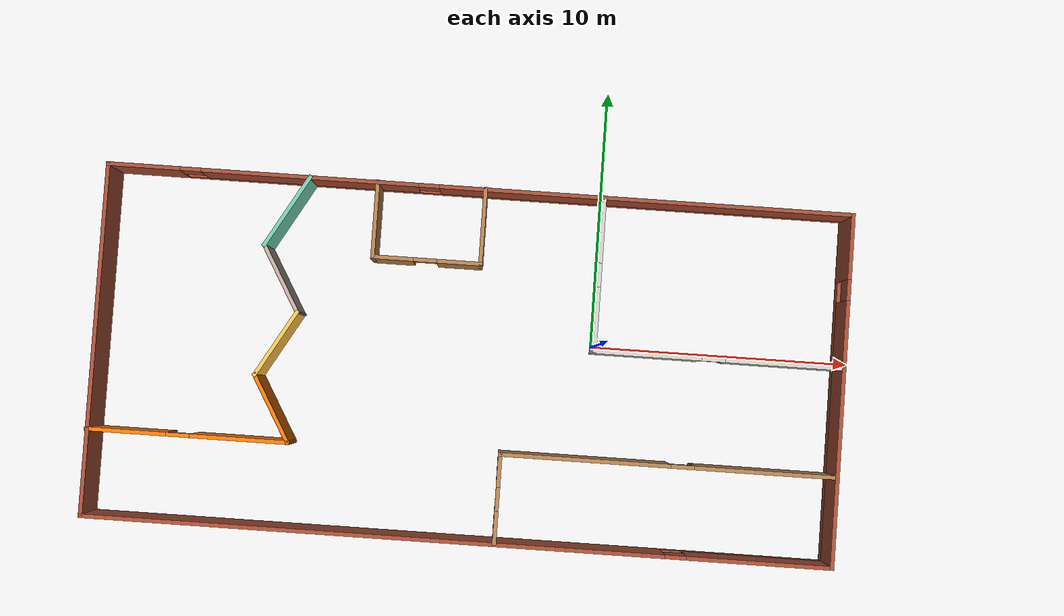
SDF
<?xml version='1.0'?>
<sdf version='1.6'>
  <model name='office'>
    <pose frame=''>-4.73889 -1.01683 0 0 -0 0</pose>
    <link name='Wall_0'>
      <collision name='Wall_0_Collision'>
        <geometry>
          <box>
            <size>13.5 0.15 2.5</size>
          </box>
        </geometry>
        <pose frame=''>0 0 1.25 0 -0 0</pose>
      </collision>
      <visual name='Wall_0_Visual'>
        <pose frame=''>0 0 1.25 0 -0 0</pose>
        <geometry>
          <box>
            <size>13.5 0.15 2.5</size>
          </box>
        </geometry>
        <material>
          <script>
            <uri>file://media/materials/scripts/gazebo.material</uri>
            <name>Gazebo/Bricks</name>
          </script>
          <ambient>1 1 1 1</ambient>
        </material>
        <meta>
          <layer>0</layer>
        </meta>
      </visual>
      <pose frame=''>-14.1592 -0.021409 0 0 0 -1.5708</pose>
    </link>
    <link name='Wall_1'>
      <pose frame=''>0.015849 -6.69641 0 0 -0 0</pose>
      <visual name='Wall_1_Visual_0'>
        <pose frame=''>-3.18138 0 1.25 0 -0 0</pose>
        <geometry>
          <box>
            <size>22.1372 0.15 2.5</size>
          </box>
        </geometry>
        <material>
          <script>
            <uri>file://media/materials/scripts/gazebo.material</uri>
            <name>Gazebo/Bricks</name>
          </script>
          <ambient>1 1 1 1</ambient>
        </material>
        <meta>
          <layer>0</layer>
        </meta>
      </visual>
      <collision name='Wall_1_Collision_0'>
        <geometry>
          <box>
            <size>22.1372 0.15 2.5</size>
          </box>
        </geometry>
        <pose frame=''>-3.18138 0 1.25 0 -0 0</pose>
      </collision>
      <visual name='Wall_1_Visual_1'>
        <pose frame=''>11.0686 0 0.25 0 -0 0</pose>
        <geometry>
          <box>
            <size>6.36277 0.15 0.5</size>
          </box>
        </geometry>
        <material>
          <script>
            <uri>file://media/materials/scripts/gazebo.material</uri>
            <name>Gazebo/Bricks</name>
          </script>
          <ambient>1 1 1 1</ambient>
        </material>
        <meta>
          <layer>0</layer>
        </meta>
      </visual>
      <collision name='Wall_1_Collision_1'>
        <geometry>
          <box>
            <size>6.36277 0.15 0.5</size>
          </box>
        </geometry>
        <pose frame=''>11.0686 0 0.25 0 -0 0</pose>
      </collision>
      <visual name='Wall_1_Visual_2'>
        <pose frame=''>11.4686 0 1.5 0 -0 0</pose>
        <geometry>
          <box>
            <size>5.56277 0.15 2</size>
          </box>
        </geometry>
        <material>
          <script>
            <uri>file://media/materials/scripts/gazebo.material</uri>
            <name>Gazebo/Bricks</name>
          </script>
          <ambient>1 1 1 1</ambient>
        </material>
        <meta>
          <layer>0</layer>
        </meta>
      </visual>
      <collision name='Wall_1_Collision_2'>
        <geometry>
          <box>
            <size>5.56277 0.15 2</size>
          </box>
        </geometry>
        <pose frame=''>11.4686 0 1.5 0 -0 0</pose>
      </collision>
      <visual name='Wall_1_Visual_3'>
        <pose frame=''>8.28723 0 1.9 0 -0 0</pose>
        <geometry>
          <box>
            <size>0.8 0.15 1.2</size>
          </box>
        </geometry>
        <material>
          <script>
            <uri>file://media/materials/scripts/gazebo.material</uri>
            <name>Gazebo/Bricks</name>
          </script>
          <ambient>1 1 1 1</ambient>
        </material>
        <meta>
          <layer>0</layer>
        </meta>
      </visual>
      <collision name='Wall_1_Collision_3'>
        <geometry>
          <box>
            <size>0.8 0.15 1.2</size>
          </box>
        </geometry>
        <pose frame=''>8.28723 0 1.9 0 -0 0</pose>
      </collision>
    </link>
    <link name='Wall_10'>
      <collision name='Wall_10_Collision'>
        <geometry>
          <box>
            <size>3 0.15 2.5</size>
          </box>
        </geometry>
        <pose frame=''>0 0 1.25 0 -0 0</pose>
      </collision>
      <visual name='Wall_10_Visual'>
        <pose frame=''>0 0 1.25 0 -0 0</pose>
        <geometry>
          <box>
            <size>3 0.15 2.5</size>
          </box>
        </geometry>
        <material>
          <script>
            <uri>file://media/materials/scripts/gazebo.material</uri>
            <name>Gazebo/Grey</name>
          </script>
          <ambient>0.760784 0.662745 0.627451 1</ambient>
        </material>
        <meta>
          <layer>0</layer>
        </meta>
      </visual>
      <pose frame=''>-7.30335 2.75019 0 0 0 -1.0472</pose>
    </link>
    <link name='Wall_11'>
      <collision name='Wall_11_Collision'>
        <geometry>
          <box>
            <size>3 0.15 2.5</size>
          </box>
        </geometry>
        <pose frame=''>0 0 1.25 0 -0 0</pose>
      </collision>
      <visual name='Wall_11_Visual'>
        <pose frame=''>0 0 1.25 0 -0 0</pose>
        <geometry>
          <box>
            <size>3 0.15 2.5</size>
          </box>
        </geometry>
        <material>
          <script>
            <uri>file://media/materials/scripts/gazebo.material</uri>
            <name>Gazebo/Grey</name>
          </script>
          <ambient>1 0.764706 0.305882 1</ambient>
        </material>
        <meta>
          <layer>0</layer>
        </meta>
      </visual>
      <pose frame=''>-7.30335 0.282021 0 0 0 -2.0944</pose>
    </link>
    <link name='Wall_12'>
      <collision name='Wall_12_Collision'>
        <geometry>
          <box>
            <size>3 0.15 2.5</size>
          </box>
        </geometry>
        <pose frame=''>0 0 1.25 0 -0 0</pose>
      </collision>
      <visual name='Wall_12_Visual'>
        <pose frame=''>0 0 1.25 0 -0 0</pose>
        <geometry>
          <box>
            <size>3 0.15 2.5</size>
          </box>
        </geometry>
        <material>
          <script>
            <uri>file://media/materials/scripts/gazebo.material</uri>
            <name>Gazebo/Grey</name>
          </script>
          <ambient>0.996078 0.47451 0.0196078 1</ambient>
        </material>
        <meta>
          <layer>0</layer>
        </meta>
      </visual>
      <pose frame=''>-7.30335 -2.18615 0 0 0 -1.0472</pose>
    </link>
    <link name='Wall_13'>
      <pose frame=''>-10.3909 -3.42024 0 0 -0 3.14159</pose>
      <visual name='Wall_13_Visual_0'>
        <pose frame=''>-1.98848 0 1.25 0 -0 0</pose>
        <geometry>
          <box>
            <size>3.77303 0.15 2.5</size>
          </box>
        </geometry>
        <material>
          <script>
            <uri>file://media/materials/scripts/gazebo.material</uri>
            <name>Gazebo/Grey</name>
          </script>
          <ambient>0.996078 0.47451 0.0196078 1</ambient>
        </material>
        <meta>
          <layer>0</layer>
        </meta>
      </visual>
      <collision name='Wall_13_Collision_0'>
        <geometry>
          <box>
            <size>3.77303 0.15 2.5</size>
          </box>
        </geometry>
        <pose frame=''>-1.98848 0 1.25 0 -0 0</pose>
      </collision>
      <visual name='Wall_13_Visual_1'>
        <pose frame=''>2.33652 0 1.25 0 -0 0</pose>
        <geometry>
          <box>
            <size>3.07697 0.15 2.5</size>
          </box>
        </geometry>
        <material>
          <script>
            <uri>file://media/materials/scripts/gazebo.material</uri>
            <name>Gazebo/Grey</name>
          </script>
          <ambient>0.996078 0.47451 0.0196078 1</ambient>
        </material>
        <meta>
          <layer>0</layer>
        </meta>
      </visual>
      <collision name='Wall_13_Collision_1'>
        <geometry>
          <box>
            <size>3.07697 0.15 2.5</size>
          </box>
        </geometry>
        <pose frame=''>2.33652 0 1.25 0 -0 0</pose>
      </collision>
      <visual name='Wall_13_Visual_2'>
        <pose frame=''>0.348034 0 2.25 0 -0 0</pose>
        <geometry>
          <box>
            <size>0.9 0.15 0.5</size>
          </box>
        </geometry>
        <material>
          <script>
            <uri>file://media/materials/scripts/gazebo.material</uri>
            <name>Gazebo/Grey</name>
          </script>
          <ambient>0.996078 0.47451 0.0196078 1</ambient>
        </material>
        <meta>
          <layer>0</layer>
        </meta>
      </visual>
      <collision name='Wall_13_Collision_2'>
        <geometry>
          <box>
            <size>0.9 0.15 0.5</size>
          </box>
        </geometry>
        <pose frame=''>0.348034 0 2.25 0 -0 0</pose>
      </collision>
    </link>
    <link name='Wall_15'>
      <pose frame=''>4.73531 3.74396 0 0 0 -1.5708</pose>
      <visual name='Wall_15_Visual_0'>
        <pose frame=''>-1.71476 0 1.25 0 -0 0</pose>
        <geometry>
          <box>
            <size>2.57049 0.15 2.5</size>
          </box>
        </geometry>
        <material>
          <script>
            <uri>file://media/materials/scripts/gazebo.material</uri>
            <name>Gazebo/CeilingTiled</name>
          </script>
          <ambient>1 1 1 1</ambient>
        </material>
        <meta>
          <layer>0</layer>
        </meta>
      </visual>
      <collision name='Wall_15_Collision_0'>
        <geometry>
          <box>
            <size>2.57049 0.15 2.5</size>
          </box>
        </geometry>
        <pose frame=''>-1.71476 0 1.25 0 -0 0</pose>
      </collision>
      <visual name='Wall_15_Visual_1'>
        <pose frame=''>1.73524 0 1.25 0 -0 0</pose>
        <geometry>
          <box>
            <size>2.52951 0.15 2.5</size>
          </box>
        </geometry>
        <material>
          <script>
            <uri>file://media/materials/scripts/gazebo.material</uri>
            <name>Gazebo/CeilingTiled</name>
          </script>
          <ambient>1 1 1 1</ambient>
        </material>
        <meta>
          <layer>0</layer>
        </meta>
      </visual>
      <collision name='Wall_15_Collision_1'>
        <geometry>
          <box>
            <size>2.52951 0.15 2.5</size>
          </box>
        </geometry>
        <pose frame=''>1.73524 0 1.25 0 -0 0</pose>
      </collision>
      <visual name='Wall_15_Visual_2'>
        <pose frame=''>0.020489 0 2.25 0 -0 0</pose>
        <geometry>
          <box>
            <size>0.9 0.15 0.5</size>
          </box>
        </geometry>
        <material>
          <script>
            <uri>file://media/materials/scripts/gazebo.material</uri>
            <name>Gazebo/CeilingTiled</name>
          </script>
          <ambient>1 1 1 1</ambient>
        </material>
        <meta>
          <layer>0</layer>
        </meta>
      </visual>
      <collision name='Wall_15_Collision_2'>
        <geometry>
          <box>
            <size>0.9 0.15 0.5</size>
          </box>
        </geometry>
        <pose frame=''>0.020489 0 2.25 0 -0 0</pose>
      </collision>
    </link>
    <link name='Wall_16'>
      <pose frame=''>9.41031 0.818959 0 0 -0 0</pose>
      <visual name='Wall_16_Visual_0'>
        <pose frame=''>-2.67653 0 1.25 0 -0 0</pose>
        <geometry>
          <box>
            <size>4.14695 0.15 2.5</size>
          </box>
        </geometry>
        <material>
          <script>
            <uri>file://media/materials/scripts/gazebo.material</uri>
            <name>Gazebo/CeilingTiled</name>
          </script>
          <ambient>1 1 1 1</ambient>
        </material>
        <meta>
          <layer>0</layer>
        </meta>
      </visual>
      <collision name='Wall_16_Collision_0'>
        <geometry>
          <box>
            <size>4.14695 0.15 2.5</size>
          </box>
        </geometry>
        <pose frame=''>-2.67653 0 1.25 0 -0 0</pose>
      </collision>
      <visual name='Wall_16_Visual_1'>
        <pose frame=''>2.52347 0 1.25 0 -0 0</pose>
        <geometry>
          <box>
            <size>4.45305 0.15 2.5</size>
          </box>
        </geometry>
        <material>
          <script>
            <uri>file://media/materials/scripts/gazebo.material</uri>
            <name>Gazebo/CeilingTiled</name>
          </script>
          <ambient>1 1 1 1</ambient>
        </material>
        <meta>
          <layer>0</layer>
        </meta>
      </visual>
      <collision name='Wall_16_Collision_1'>
        <geometry>
          <box>
            <size>4.45305 0.15 2.5</size>
          </box>
        </geometry>
        <pose frame=''>2.52347 0 1.25 0 -0 0</pose>
      </collision>
      <visual name='Wall_16_Visual_2'>
        <pose frame=''>-0.153052 0 2.25 0 -0 0</pose>
        <geometry>
          <box>
            <size>0.9 0.15 0.5</size>
          </box>
        </geometry>
        <material>
          <script>
            <uri>file://media/materials/scripts/gazebo.material</uri>
            <name>Gazebo/CeilingTiled</name>
          </script>
          <ambient>1 1 1 1</ambient>
        </material>
        <meta>
          <layer>0</layer>
        </meta>
      </visual>
      <collision name='Wall_16_Collision_2'>
        <geometry>
          <box>
            <size>0.9 0.15 0.5</size>
          </box>
        </geometry>
        <pose frame=''>-0.153052 0 2.25 0 -0 0</pose>
      </collision>
    </link>
    <link name='Wall_18'>
      <pose frame=''>1.45793 -4.97297 0 0 -0 1.5708</pose>
      <visual name='Wall_18_Visual_0'>
        <pose frame=''>-1.10779 0 1.25 0 -0 0</pose>
        <geometry>
          <box>
            <size>1.28443 0.15 2.5</size>
          </box>
        </geometry>
        <material>
          <script>
            <uri>file://media/materials/scripts/gazebo.material</uri>
            <name>Gazebo/Wood</name>
          </script>
          <ambient>1 1 1 1</ambient>
        </material>
        <meta>
          <layer>0</layer>
        </meta>
      </visual>
      <collision name='Wall_18_Collision_0'>
        <geometry>
          <box>
            <size>1.28443 0.15 2.5</size>
          </box>
        </geometry>
        <pose frame=''>-1.10779 0 1.25 0 -0 0</pose>
      </collision>
      <visual name='Wall_18_Visual_1'>
        <pose frame=''>1.09221 0 1.25 0 -0 0</pose>
        <geometry>
          <box>
            <size>1.31557 0.15 2.5</size>
          </box>
        </geometry>
        <material>
          <script>
            <uri>file://media/materials/scripts/gazebo.material</uri>
            <name>Gazebo/Wood</name>
          </script>
          <ambient>1 1 1 1</ambient>
        </material>
        <meta>
          <layer>0</layer>
        </meta>
      </visual>
      <collision name='Wall_18_Collision_1'>
        <geometry>
          <box>
            <size>1.31557 0.15 2.5</size>
          </box>
        </geometry>
        <pose frame=''>1.09221 0 1.25 0 -0 0</pose>
      </collision>
      <visual name='Wall_18_Visual_2'>
        <pose frame=''>-0.01557 0 2.25 0 -0 0</pose>
        <geometry>
          <box>
            <size>0.9 0.15 0.5</size>
          </box>
        </geometry>
        <material>
          <script>
            <uri>file://media/materials/scripts/gazebo.material</uri>
            <name>Gazebo/Wood</name>
          </script>
          <ambient>1 1 1 1</ambient>
        </material>
        <meta>
          <layer>0</layer>
        </meta>
      </visual>
      <collision name='Wall_18_Collision_2'>
        <geometry>
          <box>
            <size>0.9 0.15 0.5</size>
          </box>
        </geometry>
        <pose frame=''>-0.01557 0 2.25 0 -0 0</pose>
      </collision>
    </link>
    <link name='Wall_19'>
      <pose frame=''>7.75793 -3.29797 0 0 -0 0</pose>
      <visual name='Wall_19_Visual_0'>
        <pose frame=''>-3.11918 0 1.25 0 -0 0</pose>
        <geometry>
          <box>
            <size>6.51164 0.15 2.5</size>
          </box>
        </geometry>
        <material>
          <script>
            <uri>file://media/materials/scripts/gazebo.material</uri>
            <name>Gazebo/Wood</name>
          </script>
          <ambient>1 1 1 1</ambient>
        </material>
        <meta>
          <layer>0</layer>
        </meta>
      </visual>
      <collision name='Wall_19_Collision_0'>
        <geometry>
          <box>
            <size>6.51164 0.15 2.5</size>
          </box>
        </geometry>
        <pose frame=''>-3.11918 0 1.25 0 -0 0</pose>
      </collision>
      <visual name='Wall_19_Visual_1'>
        <pose frame=''>3.70582 0 1.25 0 -0 0</pose>
        <geometry>
          <box>
            <size>5.33836 0.15 2.5</size>
          </box>
        </geometry>
        <material>
          <script>
            <uri>file://media/materials/scripts/gazebo.material</uri>
            <name>Gazebo/Wood</name>
          </script>
          <ambient>1 1 1 1</ambient>
        </material>
        <meta>
          <layer>0</layer>
        </meta>
      </visual>
      <collision name='Wall_19_Collision_1'>
        <geometry>
          <box>
            <size>5.33836 0.15 2.5</size>
          </box>
        </geometry>
        <pose frame=''>3.70582 0 1.25 0 -0 0</pose>
      </collision>
      <visual name='Wall_19_Visual_2'>
        <pose frame=''>0.586637 0 2.25 0 -0 0</pose>
        <geometry>
          <box>
            <size>0.9 0.15 0.5</size>
          </box>
        </geometry>
        <material>
          <script>
            <uri>file://media/materials/scripts/gazebo.material</uri>
            <name>Gazebo/Wood</name>
          </script>
          <ambient>1 1 1 1</ambient>
        </material>
        <meta>
          <layer>0</layer>
        </meta>
      </visual>
      <collision name='Wall_19_Collision_2'>
        <geometry>
          <box>
            <size>0.9 0.15 0.5</size>
          </box>
        </geometry>
        <pose frame=''>0.586637 0 2.25 0 -0 0</pose>
      </collision>
    </link>
    <link name='Wall_22'>
      <collision name='Wall_22_Collision'>
        <geometry>
          <box>
            <size>3 0.15 2.5</size>
          </box>
        </geometry>
        <pose frame=''>0 0 1.25 0 -0 0</pose>
      </collision>
      <visual name='Wall_22_Visual'>
        <pose frame=''>0 0 1.25 0 -0 0</pose>
        <geometry>
          <box>
            <size>3 0.15 2.5</size>
          </box>
        </geometry>
        <material>
          <script>
            <uri>file://media/materials/scripts/gazebo.material</uri>
            <name>Gazebo/Wood</name>
          </script>
          <ambient>1 1 1 1</ambient>
        </material>
        <meta>
          <layer>0</layer>
        </meta>
      </visual>
      <pose frame=''>-3.89373 5.24396 0 0 0 -1.5708</pose>
    </link>
    <link name='Wall_23'>
      <pose frame=''>-1.84373 3.81896 0 0 -0 0</pose>
      <visual name='Wall_23_Visual_0'>
        <pose frame=''>-1.31684 0 1.25 0 -0 0</pose>
        <geometry>
          <box>
            <size>1.61632 0.15 2.5</size>
          </box>
        </geometry>
        <material>
          <script>
            <uri>file://media/materials/scripts/gazebo.material</uri>
            <name>Gazebo/Wood</name>
          </script>
          <ambient>1 1 1 1</ambient>
        </material>
        <meta>
          <layer>0</layer>
        </meta>
      </visual>
      <collision name='Wall_23_Collision_0'>
        <geometry>
          <box>
            <size>1.61632 0.15 2.5</size>
          </box>
        </geometry>
        <pose frame=''>-1.31684 0 1.25 0 -0 0</pose>
      </collision>
      <visual name='Wall_23_Visual_1'>
        <pose frame=''>1.25816 0 1.25 0 -0 0</pose>
        <geometry>
          <box>
            <size>1.73368 0.15 2.5</size>
          </box>
        </geometry>
        <material>
          <script>
            <uri>file://media/materials/scripts/gazebo.material</uri>
            <name>Gazebo/Wood</name>
          </script>
          <ambient>1 1 1 1</ambient>
        </material>
        <meta>
          <layer>0</layer>
        </meta>
      </visual>
      <collision name='Wall_23_Collision_1'>
        <geometry>
          <box>
            <size>1.73368 0.15 2.5</size>
          </box>
        </geometry>
        <pose frame=''>1.25816 0 1.25 0 -0 0</pose>
      </collision>
      <visual name='Wall_23_Visual_2'>
        <pose frame=''>-0.058683 0 2.25 0 -0 0</pose>
        <geometry>
          <box>
            <size>0.9 0.15 0.5</size>
          </box>
        </geometry>
        <material>
          <script>
            <uri>file://media/materials/scripts/gazebo.material</uri>
            <name>Gazebo/Wood</name>
          </script>
          <ambient>1 1 1 1</ambient>
        </material>
        <meta>
          <layer>0</layer>
        </meta>
      </visual>
      <collision name='Wall_23_Collision_2'>
        <geometry>
          <box>
            <size>0.9 0.15 0.5</size>
          </box>
        </geometry>
        <pose frame=''>-0.058683 0 2.25 0 -0 0</pose>
      </collision>
    </link>
    <link name='Wall_24'>
      <collision name='Wall_24_Collision'>
        <geometry>
          <box>
            <size>3 0.15 2.5</size>
          </box>
        </geometry>
        <pose frame=''>0 0 1.25 0 -0 0</pose>
      </collision>
      <visual name='Wall_24_Visual'>
        <pose frame=''>0 0 1.25 0 -0 0</pose>
        <geometry>
          <box>
            <size>3 0.15 2.5</size>
          </box>
        </geometry>
        <material>
          <script>
            <uri>file://media/materials/scripts/gazebo.material</uri>
            <name>Gazebo/Wood</name>
          </script>
          <ambient>1 1 1 1</ambient>
        </material>
        <meta>
          <layer>0</layer>
        </meta>
      </visual>
      <pose frame=''>0.206268 5.24396 0 0 -0 1.5708</pose>
    </link>
    <link name='Wall_5'>
      <pose frame=''>0.015849 6.65359 0 0 -0 0</pose>
      <visual name='Wall_5_Visual_0'>
        <pose frame=''>-12.8476 0 1.25 0 -0 0</pose>
        <geometry>
          <box>
            <size>2.80487 0.15 2.5</size>
          </box>
        </geometry>
        <material>
          <script>
            <uri>file://media/materials/scripts/gazebo.material</uri>
            <name>Gazebo/Bricks</name>
          </script>
          <ambient>1 1 1 1</ambient>
        </material>
        <meta>
          <layer>0</layer>
        </meta>
      </visual>
      <collision name='Wall_5_Collision_0'>
        <geometry>
          <box>
            <size>2.80487 0.15 2.5</size>
          </box>
        </geometry>
        <pose frame=''>-12.8476 0 1.25 0 -0 0</pose>
      </collision>
      <visual name='Wall_5_Visual_1'>
        <pose frame=''>1.40243 0 0.25 0 -0 0</pose>
        <geometry>
          <box>
            <size>25.6951 0.15 0.5</size>
          </box>
        </geometry>
        <material>
          <script>
            <uri>file://media/materials/scripts/gazebo.material</uri>
            <name>Gazebo/Bricks</name>
          </script>
          <ambient>1 1 1 1</ambient>
        </material>
        <meta>
          <layer>0</layer>
        </meta>
      </visual>
      <collision name='Wall_5_Collision_1'>
        <geometry>
          <box>
            <size>25.6951 0.15 0.5</size>
          </box>
        </geometry>
        <pose frame=''>1.40243 0 0.25 0 -0 0</pose>
      </collision>
      <visual name='Wall_5_Visual_2'>
        <pose frame=''>-6.50244 0 1.5 0 -0 0</pose>
        <geometry>
          <box>
            <size>8.28538 0.15 2</size>
          </box>
        </geometry>
        <material>
          <script>
            <uri>file://media/materials/scripts/gazebo.material</uri>
            <name>Gazebo/Bricks</name>
          </script>
          <ambient>1 1 1 1</ambient>
        </material>
        <meta>
          <layer>0</layer>
        </meta>
      </visual>
      <collision name='Wall_5_Collision_2'>
        <geometry>
          <box>
            <size>8.28538 0.15 2</size>
          </box>
        </geometry>
        <pose frame=''>-6.50244 0 1.5 0 -0 0</pose>
      </collision>
      <visual name='Wall_5_Visual_3'>
        <pose frame=''>6.34513 0 1.5 0 -0 0</pose>
        <geometry>
          <box>
            <size>15.8097 0.15 2</size>
          </box>
        </geometry>
        <material>
          <script>
            <uri>file://media/materials/scripts/gazebo.material</uri>
            <name>Gazebo/Bricks</name>
          </script>
          <ambient>1 1 1 1</ambient>
        </material>
        <meta>
          <layer>0</layer>
        </meta>
      </visual>
      <collision name='Wall_5_Collision_3'>
        <geometry>
          <box>
            <size>15.8097 0.15 2</size>
          </box>
        </geometry>
        <pose frame=''>6.34513 0 1.5 0 -0 0</pose>
      </collision>
      <visual name='Wall_5_Visual_4'>
        <pose frame=''>-11.0451 0 1.9 0 -0 0</pose>
        <geometry>
          <box>
            <size>0.8 0.15 1.2</size>
          </box>
        </geometry>
        <material>
          <script>
            <uri>file://media/materials/scripts/gazebo.material</uri>
            <name>Gazebo/Bricks</name>
          </script>
          <ambient>1 1 1 1</ambient>
        </material>
        <meta>
          <layer>0</layer>
        </meta>
      </visual>
      <collision name='Wall_5_Collision_4'>
        <geometry>
          <box>
            <size>0.8 0.15 1.2</size>
          </box>
        </geometry>
        <pose frame=''>-11.0451 0 1.9 0 -0 0</pose>
      </collision>
      <visual name='Wall_5_Visual_5'>
        <pose frame=''>-1.95975 0 1.9 0 -0 0</pose>
        <geometry>
          <box>
            <size>0.8 0.15 1.2</size>
          </box>
        </geometry>
        <material>
          <script>
            <uri>file://media/materials/scripts/gazebo.material</uri>
            <name>Gazebo/Bricks</name>
          </script>
          <ambient>1 1 1 1</ambient>
        </material>
        <meta>
          <layer>0</layer>
        </meta>
      </visual>
      <collision name='Wall_5_Collision_5'>
        <geometry>
          <box>
            <size>0.8 0.15 1.2</size>
          </box>
        </geometry>
        <pose frame=''>-1.95975 0 1.9 0 -0 0</pose>
      </collision>
    </link>
    <link name='Wall_6'>
      <pose frame=''>14.1908 -0.021409 0 0 0 -1.5708</pose>
      <visual name='Wall_6_Visual_0'>
        <pose frame=''>-5.48893 0 1.25 0 -0 0</pose>
        <geometry>
          <box>
            <size>2.52215 0.15 2.5</size>
          </box>
        </geometry>
        <material>
          <script>
            <uri>file://media/materials/scripts/gazebo.material</uri>
            <name>Gazebo/Bricks</name>
          </script>
          <ambient>1 1 1 1</ambient>
        </material>
        <meta>
          <layer>0</layer>
        </meta>
      </visual>
      <collision name='Wall_6_Collision_0'>
        <geometry>
          <box>
            <size>2.52215 0.15 2.5</size>
          </box>
        </geometry>
        <pose frame=''>-5.48893 0 1.25 0 -0 0</pose>
      </collision>
      <visual name='Wall_6_Visual_1'>
        <pose frame=''>1.26107 0 0.25 0 -0 0</pose>
        <geometry>
          <box>
            <size>10.9779 0.15 0.5</size>
          </box>
        </geometry>
        <material>
          <script>
            <uri>file://media/materials/scripts/gazebo.material</uri>
            <name>Gazebo/Bricks</name>
          </script>
          <ambient>1 1 1 1</ambient>
        </material>
        <meta>
          <layer>0</layer>
        </meta>
      </visual>
      <collision name='Wall_6_Collision_1'>
        <geometry>
          <box>
            <size>10.9779 0.15 0.5</size>
          </box>
        </geometry>
        <pose frame=''>1.26107 0 0.25 0 -0 0</pose>
      </collision>
      <visual name='Wall_6_Visual_2'>
        <pose frame=''>1.66108 0 1.5 0 -0 0</pose>
        <geometry>
          <box>
            <size>10.1778 0.15 2</size>
          </box>
        </geometry>
        <material>
          <script>
            <uri>file://media/materials/scripts/gazebo.material</uri>
            <name>Gazebo/Bricks</name>
          </script>
          <ambient>1 1 1 1</ambient>
        </material>
        <meta>
          <layer>0</layer>
        </meta>
      </visual>
      <collision name='Wall_6_Collision_2'>
        <geometry>
          <box>
            <size>10.1778 0.15 2</size>
          </box>
        </geometry>
        <pose frame=''>1.66108 0 1.5 0 -0 0</pose>
      </collision>
      <visual name='Wall_6_Visual_3'>
        <pose frame=''>-3.82785 0 1.9 0 -0 0</pose>
        <geometry>
          <box>
            <size>0.8 0.15 1.2</size>
          </box>
        </geometry>
        <material>
          <script>
            <uri>file://media/materials/scripts/gazebo.material</uri>
            <name>Gazebo/Bricks</name>
          </script>
          <ambient>1 1 1 1</ambient>
        </material>
        <meta>
          <layer>0</layer>
        </meta>
      </visual>
      <collision name='Wall_6_Collision_3'>
        <geometry>
          <box>
            <size>0.8 0.15 1.2</size>
          </box>
        </geometry>
        <pose frame=''>-3.82785 0 1.9 0 -0 0</pose>
      </collision>
    </link>
    <link name='Wall_9'>
      <collision name='Wall_9_Collision'>
        <geometry>
          <box>
            <size>3.25 0.15 2.5</size>
          </box>
        </geometry>
        <pose frame=''>0 0 1.25 0 -0 0</pose>
      </collision>
      <visual name='Wall_9_Visual'>
        <pose frame=''>0 0 1.25 0 -0 0</pose>
        <geometry>
          <box>
            <size>3.25 0.15 2.5</size>
          </box>
        </geometry>
        <material>
          <script>
            <uri>file://media/materials/scripts/gazebo.material</uri>
            <name>Gazebo/Grey</name>
          </script>
          <ambient>0.435294 0.796078 0.67451 1</ambient>
        </material>
        <meta>
          <layer>0</layer>
        </meta>
      </visual>
      <pose frame=''>-7.24085 5.32662 0 0 0 -2.0944</pose>
    </link>
    <static>1</static>
  </model>
</sdf>
